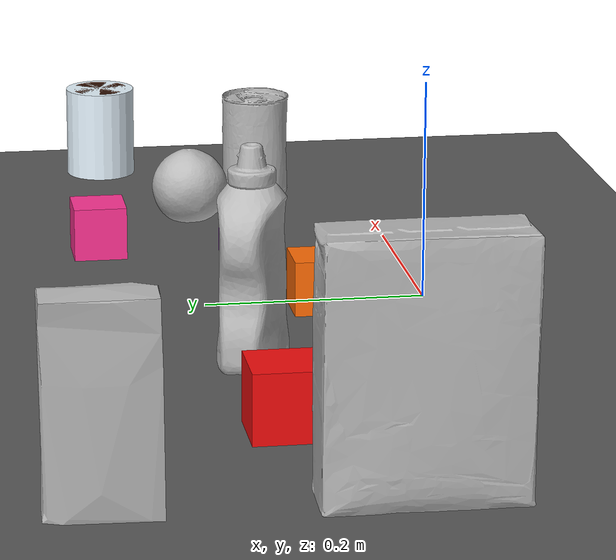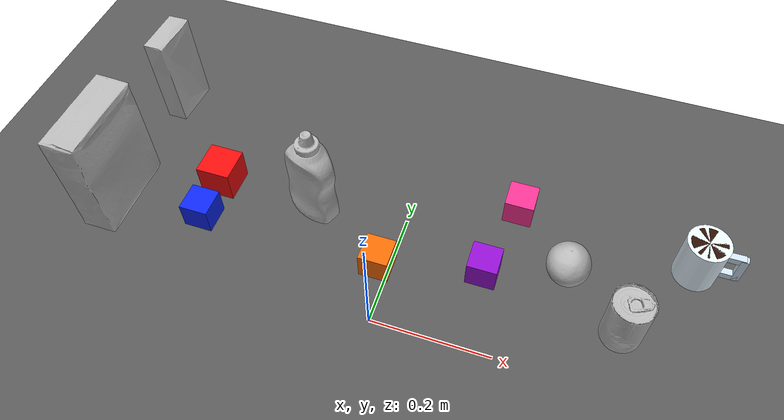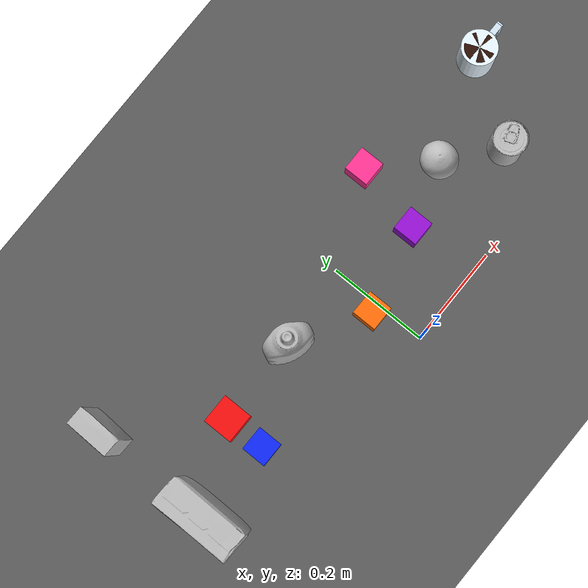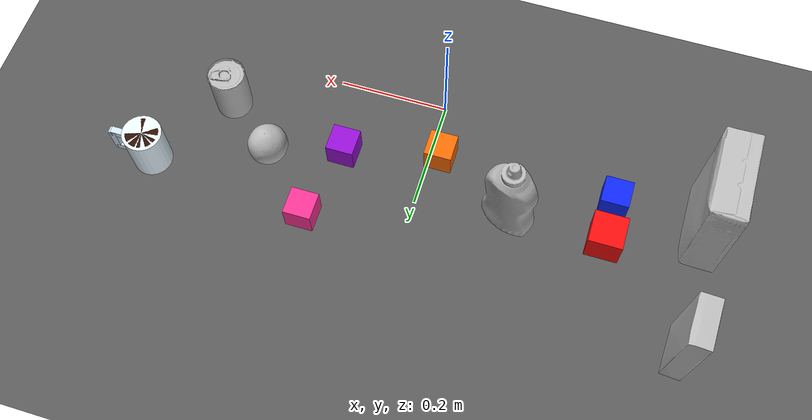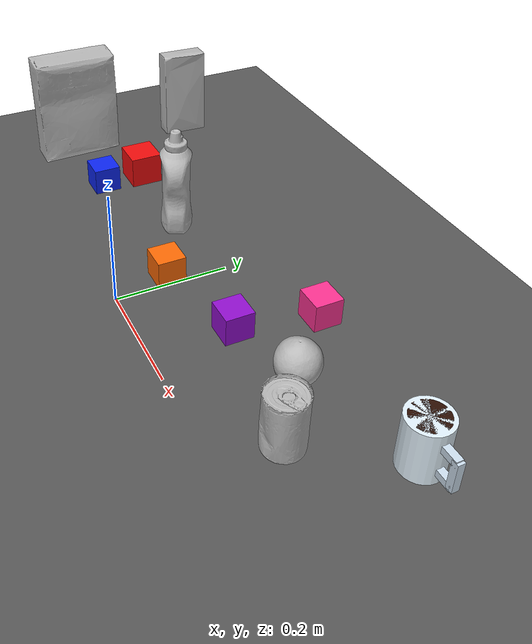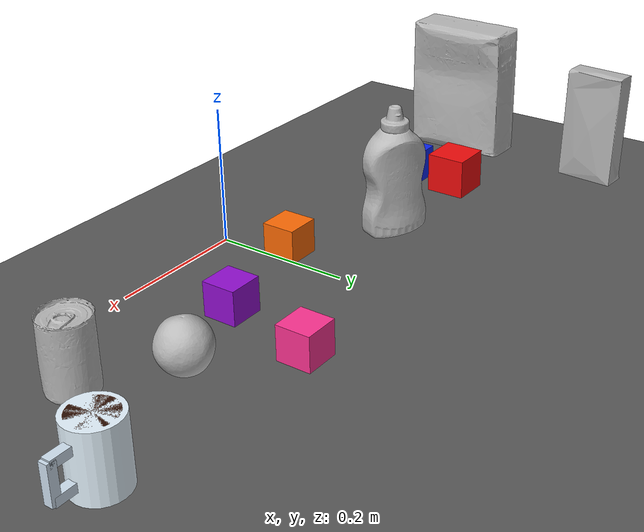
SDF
<sdf version="1.7">
 <world name="ur3_pick_place">
  <model name="ground_plane">
   <static>true</static>
   <pose>0 0 -0.081 0 0 0</pose>
   <link name="link">
    <collision name="collision">
     <geometry><plane><normal>0 0 1</normal><size>10 10</size></plane></geometry>
    </collision>
    <visual name="visual">
     <geometry><plane><normal>0 0 1</normal><size>10 10</size></plane></geometry>
     <material><ambient>0.25 0.25 0.25 1</ambient><diffuse>0.35 0.35 0.35 1</diffuse></material>
    </visual>
   </link>
   <plugin filename="ignition-gazebo-label-system" name="ignition::gazebo::systems::Label">
    <label>41</label>
   </plugin>
  </model>
  <model name="oblique_table_camera">
   <static>true</static>
   <pose>0 -0.90 0.45 0 0.25 1.57079632679</pose>
   <link name="oblique_table_camera_link">
    <sensor name="oblique_table_rgbd" type="rgbd_camera">
     <camera>
      <horizontal_fov>1.10</horizontal_fov>
      <image><width>640</width><height>480</height><format>R8G8B8</format></image>
      <clip><near>0.10</near><far>3.0</far></clip>
      <depth_camera><clip><near>0.10</near><far>3.0</far></clip></depth_camera>
      <optical_frame_id>oblique_table_camera_optical_frame</optical_frame_id>
     </camera>
     <always_on>true</always_on>
     <update_rate>30</update_rate>
     <visualize>true</visualize>
     <topic>/oblique_table_camera</topic>
     <gz_frame_id>oblique_table_camera_optical_frame</gz_frame_id>
    </sensor>
   </link>
  </model>
  <model name="red_cube">
   <pose>-0.34 0.18 0.03 0 0 0</pose>
   <link name="cube_link">
    <inertial>
     <mass>0.08</mass>
     <inertia><ixx>0.000048</ixx><iyy>0.000048</iyy><izz>0.000048</izz></inertia>
    </inertial>
    <collision name="collision">
     <geometry><box><size>0.06 0.06 0.06</size></box></geometry>
     <surface><friction><ode><mu>1.2</mu><mu2>1.2</mu2></ode></friction></surface>
    </collision>
    <visual name="visual">
     <geometry><box><size>0.06 0.06 0.06</size></box></geometry>
     <material><ambient>0.8 0.03 0.03 1</ambient><diffuse>0.95 0.05 0.05 1</diffuse></material>
    </visual>
   </link>
   <plugin filename="ignition-gazebo-pose-publisher-system" name="gz::sim::systems::PosePublisher">
    <publish_link_pose>false</publish_link_pose>
    <publish_collision_pose>false</publish_collision_pose>
    <publish_visual_pose>false</publish_visual_pose>
    <publish_nested_model_pose>false</publish_nested_model_pose>
    <use_pose_vector_msg>true</use_pose_vector_msg>
    <static_publisher>false</static_publisher>
    <update_frequency>15</update_frequency>
   </plugin>
   <plugin filename="ignition-gazebo-label-system" name="ignition::gazebo::systems::Label">
    <label>1</label>
   </plugin>
  </model>
  <model name="blue_cube">
   <pose>-0.34 0.10 0.025 0 0 0</pose>
   <link name="cube_link">
    <inertial>
     <mass>0.06</mass>
     <inertia><ixx>0.000025</ixx><iyy>0.000025</iyy><izz>0.000025</izz></inertia>
    </inertial>
    <collision name="collision"><geometry><box><size>0.05 0.05 0.05</size></box></geometry></collision>
    <visual name="visual">
     <geometry><box><size>0.05 0.05 0.05</size></box></geometry>
     <material><ambient>0.03 0.10 0.8 1</ambient><diffuse>0.05 0.15 0.95 1</diffuse></material>
    </visual>
   </link>
   <plugin filename="ignition-gazebo-label-system" name="ignition::gazebo::systems::Label">
    <label>2</label>
   </plugin>
  </model>
  <model name="orange_cube">
   <pose>-0.02 0.10 0.025 0 0 0</pose>
   <link name="cube_link">
    <inertial>
     <mass>0.06</mass>
     <inertia><ixx>0.000025</ixx><iyy>0.000025</iyy><izz>0.000025</izz></inertia>
    </inertial>
    <collision name="collision"><geometry><box><size>0.05 0.05 0.05</size></box></geometry></collision>
    <visual name="visual">
     <geometry><box><size>0.05 0.05 0.05</size></box></geometry>
     <material><ambient>0.88 0.28 0.01 1</ambient><diffuse>1.00 0.42 0.02 1</diffuse></material>
    </visual>
   </link>
   <plugin filename="ignition-gazebo-label-system" name="ignition::gazebo::systems::Label">
    <label>5</label>
   </plugin>
  </model>
  <model name="purple_cube">
   <pose>0.15 0.14 0.025 0 0 0</pose>
   <link name="cube_link">
    <inertial>
     <mass>0.06</mass>
     <inertia><ixx>0.000025</ixx><iyy>0.000025</iyy><izz>0.000025</izz></inertia>
    </inertial>
    <collision name="collision"><geometry><box><size>0.05 0.05 0.05</size></box></geometry></collision>
    <visual name="visual">
     <geometry><box><size>0.05 0.05 0.05</size></box></geometry>
     <material><ambient>0.42 0.03 0.62 1</ambient><diffuse>0.58 0.06 0.82 1</diffuse></material>
    </visual>
   </link>
   <plugin filename="ignition-gazebo-label-system" name="ignition::gazebo::systems::Label">
    <label>6</label>
   </plugin>
  </model>
  <model name="pink_cube">
   <pose>0.18 0.28 0.025 0 0 0</pose>
   <link name="cube_link">
    <inertial>
     <mass>0.06</mass>
     <inertia><ixx>0.000025</ixx><iyy>0.000025</iyy><izz>0.000025</izz></inertia>
    </inertial>
    <collision name="collision"><geometry><box><size>0.05 0.05 0.05</size></box></geometry></collision>
    <visual name="visual">
     <geometry><box><size>0.05 0.05 0.05</size></box></geometry>
     <material><ambient>0.88 0.10 0.42 1</ambient><diffuse>1.00 0.20 0.58 1</diffuse></material>
    </visual>
   </link>
   <plugin filename="ignition-gazebo-label-system" name="ignition::gazebo::systems::Label">
    <label>7</label>
   </plugin>
  </model>
  <model name="ycb_cracker_box">
   <pose>-0.50 0.10 0.106710 0 0 0</pose>
   <link name="object_link">
    <inertial>
     <mass>0.18</mass>
     <inertia><ixx>0.00108</ixx><iyy>0.00076</iyy><izz>0.00048</izz></inertia>
    </inertial>
    <collision name="collision">
     <geometry><box><size>0.071720 0.163986 0.213421</size></box></geometry>
     <surface><friction><ode><mu>1.1</mu><mu2>1.1</mu2></ode></friction></surface>
    </collision>
    <visual name="ycb_visual">
     <pose>0.012893 0.014149 -0.103525 0 0 0</pose>
     <geometry><mesh><uri>../models/ycb/003_cracker_box/003_cracker_box.obj</uri></mesh></geometry>
    </visual>
   </link>
   <plugin filename="ignition-gazebo-pose-publisher-system" name="gz::sim::systems::PosePublisher">
    <publish_link_pose>false</publish_link_pose>
    <publish_collision_pose>false</publish_collision_pose>
    <publish_visual_pose>false</publish_visual_pose>
    <publish_nested_model_pose>false</publish_nested_model_pose>
    <use_pose_vector_msg>true</use_pose_vector_msg>
    <static_publisher>false</static_publisher>
    <update_frequency>15</update_frequency>
   </plugin>
   <plugin filename="ignition-gazebo-label-system" name="ignition::gazebo::systems::Label">
    <label>21</label>
   </plugin>
  </model>
  <model name="ycb_sugar_box">
   <pose>-0.50 0.34 0.088107 0 0 0</pose>
   <link name="object_link">
    <inertial>
     <mass>0.15</mass>
     <inertia><ixx>0.00050</ixx><iyy>0.00042</iyy><izz>0.00014</izz></inertia>
    </inertial>
    <collision name="collision">
     <geometry><box><size>0.049450 0.093374 0.176214</size></box></geometry>
     <surface><friction><ode><mu>1.1</mu><mu2>1.1</mu2></ode></friction></surface>
    </collision>
    <visual name="ycb_visual">
     <pose>0.007099 0.016887 -0.088023 0 0 0</pose>
     <geometry><mesh><uri>../models/ycb/004_sugar_box/004_sugar_box.obj</uri></mesh></geometry>
    </visual>
   </link>
   <plugin filename="ignition-gazebo-pose-publisher-system" name="gz::sim::systems::PosePublisher">
    <publish_link_pose>false</publish_link_pose>
    <publish_collision_pose>false</publish_collision_pose>
    <publish_visual_pose>false</publish_visual_pose>
    <publish_nested_model_pose>false</publish_nested_model_pose>
    <use_pose_vector_msg>true</use_pose_vector_msg>
    <static_publisher>false</static_publisher>
    <update_frequency>15</update_frequency>
   </plugin>
   <plugin filename="ignition-gazebo-label-system" name="ignition::gazebo::systems::Label">
    <label>22</label>
   </plugin>
  </model>
  <model name="ycb_tomato_soup_can">
   <pose>0.38 0.10 0.050948 0 0 0</pose>
   <link name="object_link">
    <inertial>
     <mass>0.12</mass>
     <inertia><ixx>0.00013</ixx><iyy>0.00013</iyy><izz>0.00014</izz></inertia>
    </inertial>
    <collision name="collision">
     <geometry><cylinder><radius>0.03395</radius><length>0.101895</length></cylinder></geometry>
     <surface><friction><ode><mu>1.1</mu><mu2>1.1</mu2></ode></friction></surface>
    </collision>
    <visual name="ycb_visual">
     <pose>0.009150 -0.084021 -0.050990 0 0 0</pose>
     <geometry><mesh><uri>../models/ycb/005_tomato_soup_can/005_tomato_soup_can.obj</uri></mesh></geometry>
    </visual>
   </link>
   <plugin filename="ignition-gazebo-pose-publisher-system" name="gz::sim::systems::PosePublisher">
    <publish_link_pose>false</publish_link_pose>
    <publish_collision_pose>false</publish_collision_pose>
    <publish_visual_pose>false</publish_visual_pose>
    <publish_nested_model_pose>false</publish_nested_model_pose>
    <use_pose_vector_msg>true</use_pose_vector_msg>
    <static_publisher>false</static_publisher>
    <update_frequency>15</update_frequency>
   </plugin>
   <plugin filename="ignition-gazebo-label-system" name="ignition::gazebo::systems::Label">
    <label>23</label>
   </plugin>
  </model>
  <model name="ycb_mustard_bottle">
   <pose>-0.165 0.18 0.095695 0 0 0</pose>
   <link name="object_link">
    <inertial>
     <mass>0.18</mass>
     <inertia><ixx>0.00061</ixx><iyy>0.00069</iyy><izz>0.00021</izz></inertia>
    </inertial>
    <collision name="collision">
     <geometry><cylinder><radius>0.030</radius><length>0.185</length></cylinder></geometry>
     <surface><friction><ode><mu>1.1</mu><mu2>1.1</mu2></ode></friction></surface>
    </collision>
    <visual name="ycb_visual">
     <pose>0.015323 0.023535 -0.092468 0 0 0</pose>
     <geometry><mesh><uri>../models/ycb/006_mustard_bottle/006_mustard_bottle.obj</uri></mesh></geometry>
    </visual>
   </link>
   <plugin filename="ignition-gazebo-pose-publisher-system" name="gz::sim::systems::PosePublisher">
    <publish_link_pose>false</publish_link_pose>
    <publish_collision_pose>false</publish_collision_pose>
    <publish_visual_pose>false</publish_visual_pose>
    <publish_nested_model_pose>false</publish_nested_model_pose>
    <use_pose_vector_msg>true</use_pose_vector_msg>
    <static_publisher>false</static_publisher>
    <update_frequency>15</update_frequency>
   </plugin>
   <plugin filename="ignition-gazebo-label-system" name="ignition::gazebo::systems::Label">
    <label>24</label>
   </plugin>
  </model>
  <model name="ycb_orange">
   <pose>0.28 0.18 0.037010 0 0 0</pose>
   <link name="object_link">
    <inertial>
     <mass>0.13</mass>
     <inertia><ixx>0.00007</ixx><iyy>0.00007</iyy><izz>0.00007</izz></inertia>
    </inertial>
    <velocity_decay><linear>0.25</linear><angular>0.80</angular></velocity_decay>
    <collision name="collision">
     <geometry><sphere><radius>0.03701</radius></sphere></geometry>
     <surface><friction><ode><mu>1.5</mu><mu2>1.5</mu2></ode></friction></surface>
    </collision>
    <visual name="ycb_visual">
     <pose>0.006944 0.018358 -0.035408 0 0 0</pose>
     <geometry><mesh><uri>../models/ycb/017_orange/017_orange.obj</uri></mesh></geometry>
    </visual>
   </link>
   <plugin filename="ignition-gazebo-pose-publisher-system" name="gz::sim::systems::PosePublisher">
    <publish_link_pose>false</publish_link_pose>
    <publish_collision_pose>false</publish_collision_pose>
    <publish_visual_pose>false</publish_visual_pose>
    <publish_nested_model_pose>false</publish_nested_model_pose>
    <use_pose_vector_msg>true</use_pose_vector_msg>
    <static_publisher>false</static_publisher>
    <update_frequency>15</update_frequency>
   </plugin>
   <plugin filename="ignition-gazebo-label-system" name="ignition::gazebo::systems::Label">
    <label>27</label>
   </plugin>
  </model>
  <model name="cup">
   <static>true</static>
   <pose>0.48 0.25 0.045 0 0 0</pose>
   <link name="cup_link">
    <collision name="cup_collision">
     <geometry><cylinder><radius>0.035</radius><length>0.090</length></cylinder></geometry>
    </collision>
    <visual name="ceramic_body">
     <geometry><cylinder><radius>0.035</radius><length>0.090</length></cylinder></geometry>
     <material>
      <ambient>0.80 0.87 0.92 1</ambient>
      <diffuse>0.90 0.96 1.0 1</diffuse>
      <specular>0.35 0.35 0.35 1</specular>
     </material>
    </visual>
    <visual name="coffee">
     <pose>0 0 0.043 0 0 0</pose>
     <geometry><cylinder><radius>0.029</radius><length>0.004</length></cylinder></geometry>
     <material><ambient>0.10 0.035 0.01 1</ambient><diffuse>0.18 0.06 0.015 1</diffuse></material>
    </visual>
    <visual name="handle_upper">
     <pose>0.047 0 0.022 0 0 0</pose>
     <geometry><box><size>0.030 0.012 0.012</size></box></geometry>
     <material><ambient>0.82 0.89 0.95 1</ambient></material>
    </visual>
    <visual name="handle_lower">
     <pose>0.047 0 -0.022 0 0 0</pose>
     <geometry><box><size>0.030 0.012 0.012</size></box></geometry>
     <material><ambient>0.82 0.89 0.95 1</ambient></material>
    </visual>
    <visual name="handle_side">
     <pose>0.060 0 0 0 0 0</pose>
     <geometry><box><size>0.012 0.012 0.052</size></box></geometry>
     <material><ambient>0.82 0.89 0.95 1</ambient></material>
    </visual>
   </link>
   <plugin filename="ignition-gazebo-label-system" name="ignition::gazebo::systems::Label">
    <label>30</label>
   </plugin>
  </model>
 </world>
</sdf>
